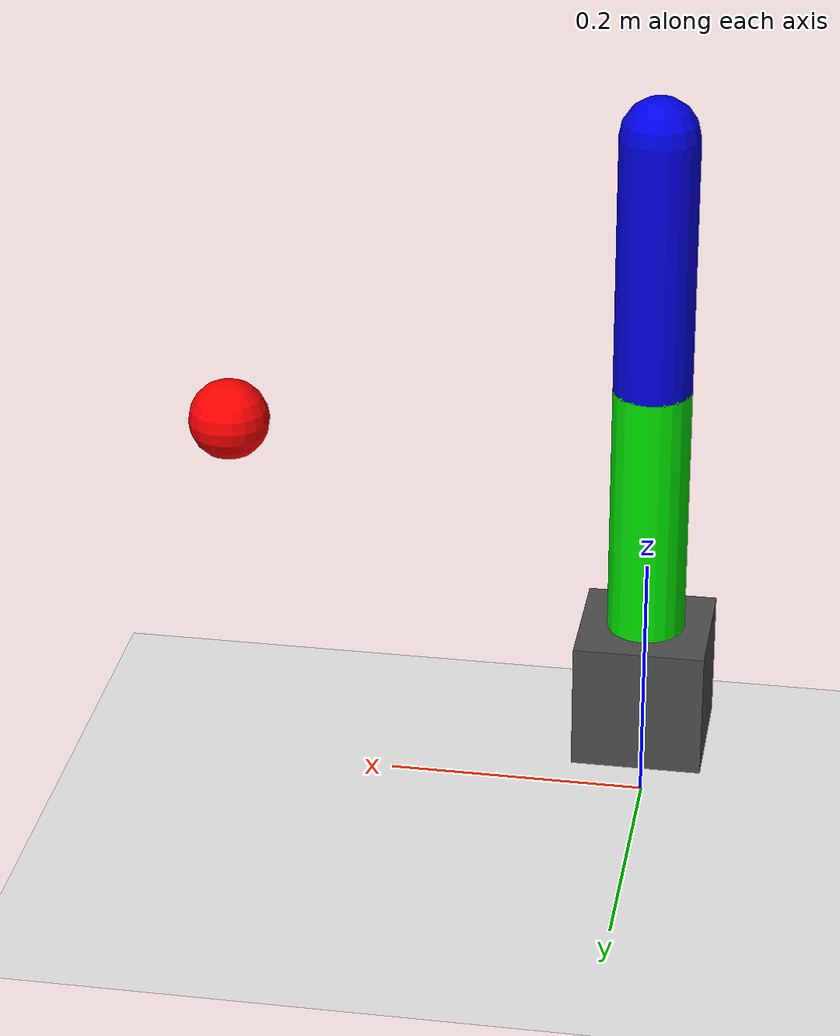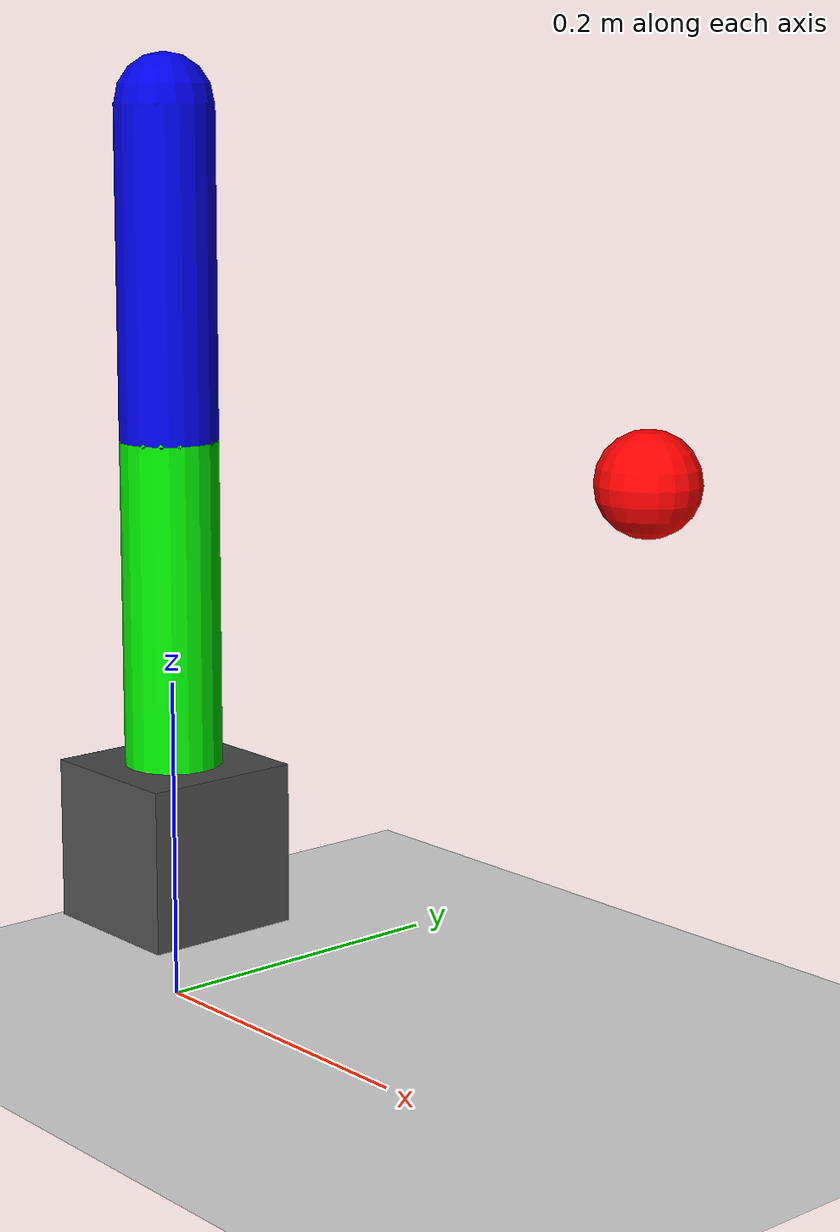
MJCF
<mujoco model="simple_arm">
  <compiler angle="radian" inertiafromgeom="true"/>
  <option integrator="RK4" timestep="0.01"/>

  <worldbody>
    <light diffuse=".5 .5 .5" pos="0 0 3" dir="0 0 -1"/>
    <geom type="plane" size="1 1 0.1" rgba=".9 .9 .9 1"/>

    <camera name="fixed_camera" pos="0 -1.0 1.0" xyaxes="1 0 0 0 1 1"/>
    <camera name="top_down" pos="0 0 2.0" zaxis="0 0 1"/>

    <body name="base" pos="0 0 0.1">
      <joint type="free"/>
      <geom type="box" size=".05 .05 .05" rgba=".3 .3 .3 1"/>

      <body name="link1" pos="0 0 0.05">
        <joint name="joint1" type="hinge" axis="0 0 1" pos="0 0 0" range="-2.0 2.0"/>
        <geom type="capsule" size=".03 .1" fromto="0 0 0 0 0 0.2" rgba="0 .9 0 1"/>

        <body name="link2" pos="0 0 0.2">
          <joint name="joint2" type="hinge" axis="0 1 0" pos="0 0 0" range="-2.0 2.0"/>
          <geom name="link2_geom" type="capsule" size=".03 .1" fromto="0 0 0 0 0 0.2" rgba="0 0 .9 1"/>

          <site name="end_effector" pos="0 0 0.2" size=".02"/>

          <body name="target" pos="0.3 0.1 0">
            <geom name="target_geom" type="sphere" size=".03" rgba="1 0 0 1" contype="0" conaffinity="0"/>
          </body>
        </body>
      </body>
    </body>
  </worldbody>

  <actuator>
    <motor joint="joint1" name="motor1" gear="10" ctrllimited="true" ctrlrange="-1.0 1.0"/>
    <motor joint="joint2" name="motor2" gear="10" ctrllimited="true" ctrlrange="-1.0 1.0"/>
  </actuator>

</mujoco>
